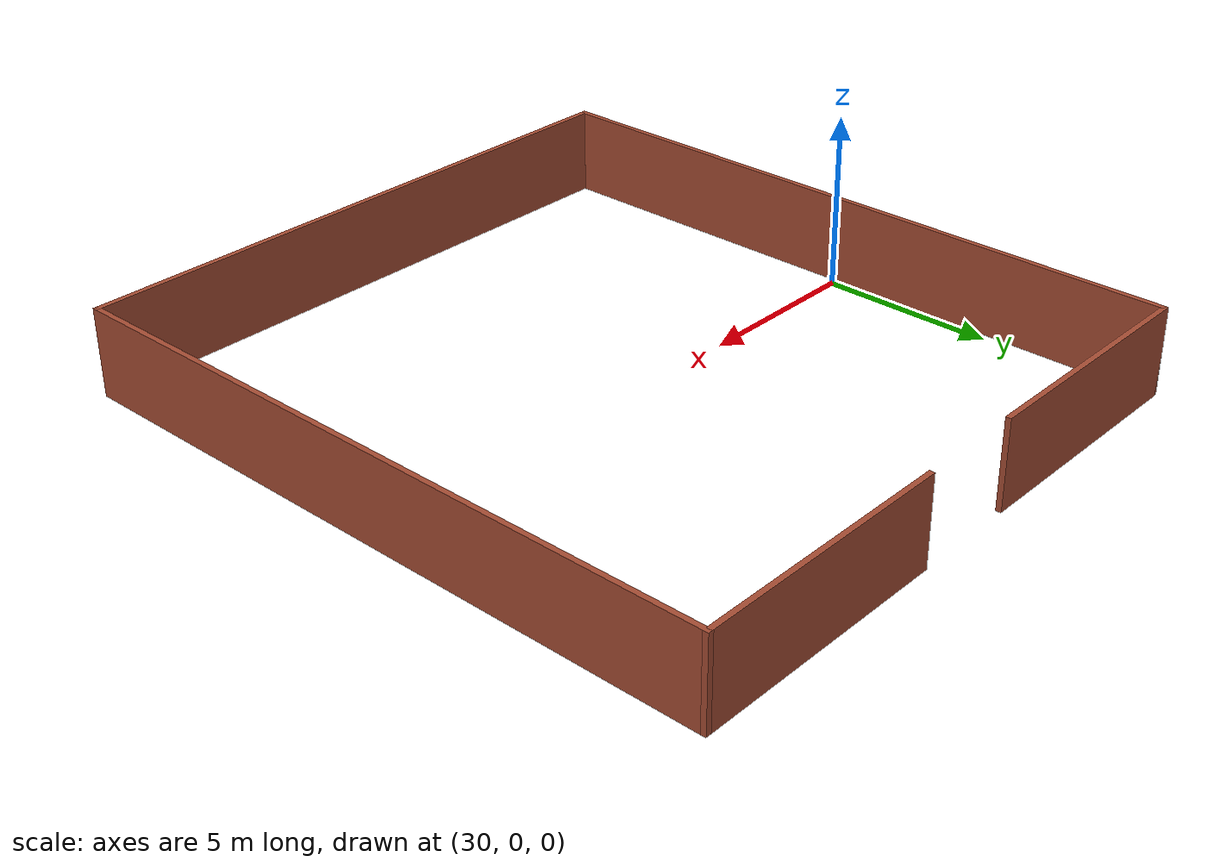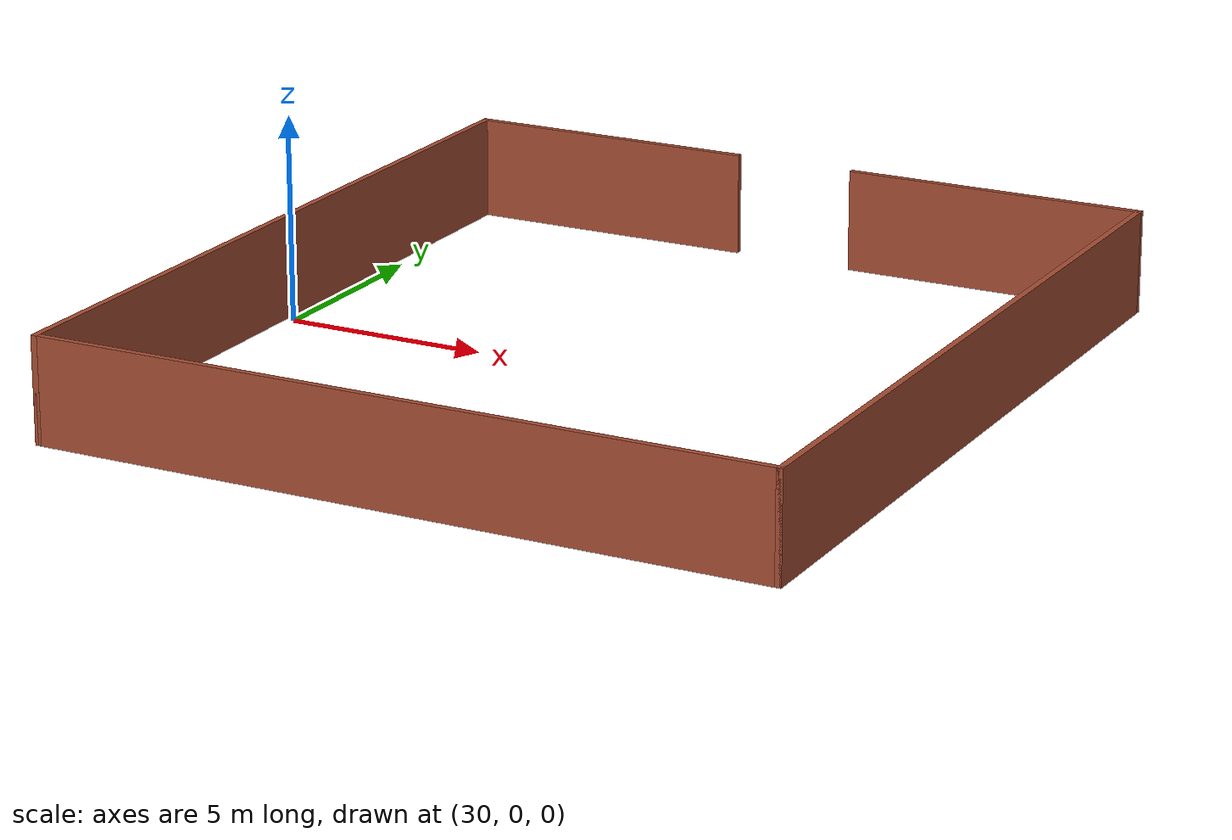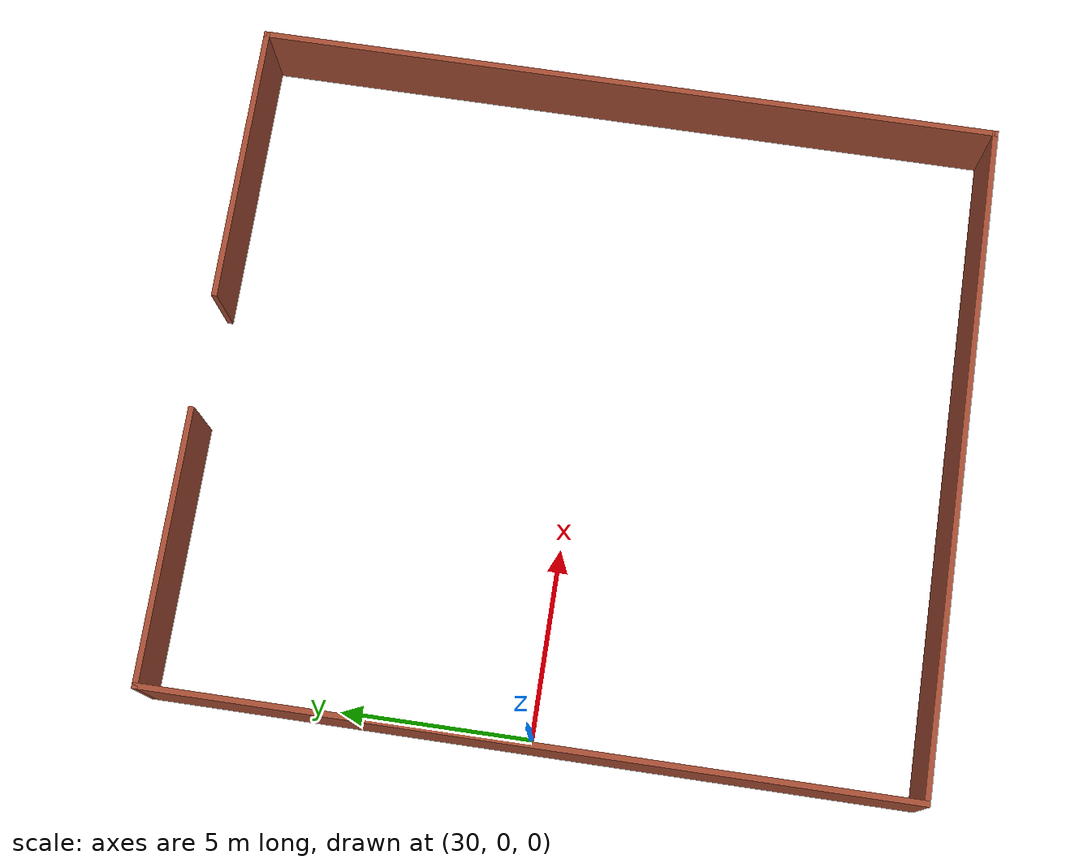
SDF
<?xml version='1.0'?>
<sdf version='1.6'>
  <model name='Untitled'>
    <pose frame=''>38.5061 -0.005097 0 0 -0 0</pose>
    <link name='Wall_10'>
      <collision name='Wall_10_Collision'>
        <geometry>
          <box>
            <size>17.75 0.15 2.5</size>
          </box>
        </geometry>
        <pose frame=''>0 0 1.25 0 -0 0</pose>
      </collision>
      <visual name='Wall_10_Visual'>
        <pose frame=''>0 0 1.25 0 -0 0</pose>
        <geometry>
          <box>
            <size>17.75 0.15 2.5</size>
          </box>
        </geometry>
        <material>
          <script>
            <uri>file://media/materials/scripts/gazebo.material</uri>
            <name>Gazebo/Bricks</name>
          </script>
          <ambient>1 1 1 1</ambient>
        </material>
        <meta>
          <layer>0</layer>
        </meta>
      </visual>
      <pose frame=''>1e-06 -9.8 0 0 -0 0</pose>
    </link>
    <link name='Wall_11'>
      <collision name='Wall_11_Collision'>
        <geometry>
          <box>
            <size>19.75 0.15 2.5</size>
          </box>
        </geometry>
        <pose frame=''>0 0 1.25 0 -0 0</pose>
      </collision>
      <visual name='Wall_11_Visual'>
        <pose frame=''>0 0 1.25 0 -0 0</pose>
        <geometry>
          <box>
            <size>19.75 0.15 2.5</size>
          </box>
        </geometry>
        <material>
          <script>
            <uri>file://media/materials/scripts/gazebo.material</uri>
            <name>Gazebo/Bricks</name>
          </script>
          <ambient>1 1 1 1</ambient>
        </material>
        <meta>
          <layer>0</layer>
        </meta>
      </visual>
      <pose frame=''>8.8 0 0 0 -0 1.5708</pose>
    </link>
    <link name='Wall_13'>
      <collision name='Wall_13_Collision'>
        <geometry>
          <box>
            <size>7.25 0.15 2.5</size>
          </box>
        </geometry>
        <pose frame=''>0 0 1.25 0 -0 0</pose>
      </collision>
      <visual name='Wall_13_Visual'>
        <pose frame=''>0 0 1.25 0 -0 0</pose>
        <geometry>
          <box>
            <size>7.25 0.15 2.5</size>
          </box>
        </geometry>
        <material>
          <script>
            <uri>file://media/materials/scripts/gazebo.material</uri>
            <name>Gazebo/Bricks</name>
          </script>
          <ambient>1 1 1 1</ambient>
        </material>
        <meta>
          <layer>0</layer>
        </meta>
      </visual>
      <pose frame=''>-5.25 9.8 0 0 -0 0</pose>
    </link>
    <link name='Wall_16'>
      <collision name='Wall_16_Collision'>
        <geometry>
          <box>
            <size>7.5 0.15 2.5</size>
          </box>
        </geometry>
        <pose frame=''>0 0 1.25 0 -0 0</pose>
      </collision>
      <visual name='Wall_16_Visual'>
        <pose frame=''>0 0 1.25 0 -0 0</pose>
        <geometry>
          <box>
            <size>7.5 0.15 2.5</size>
          </box>
        </geometry>
        <material>
          <script>
            <uri>file://media/materials/scripts/gazebo.material</uri>
            <name>Gazebo/Bricks</name>
          </script>
          <ambient>1 1 1 1</ambient>
        </material>
        <meta>
          <layer>0</layer>
        </meta>
      </visual>
      <pose frame=''>5.125 9.8 0 0 -0 3.14159</pose>
    </link>
    <link name='Wall_9'>
      <collision name='Wall_9_Collision'>
        <geometry>
          <box>
            <size>19.75 0.15 2.5</size>
          </box>
        </geometry>
        <pose frame=''>0 0 1.25 0 -0 0</pose>
      </collision>
      <visual name='Wall_9_Visual'>
        <pose frame=''>0 0 1.25 0 -0 0</pose>
        <geometry>
          <box>
            <size>19.75 0.15 2.5</size>
          </box>
        </geometry>
        <material>
          <script>
            <uri>file://media/materials/scripts/gazebo.material</uri>
            <name>Gazebo/Bricks</name>
          </script>
          <ambient>1 1 1 1</ambient>
        </material>
        <meta>
          <layer>0</layer>
        </meta>
      </visual>
      <pose frame=''>-8.8 0 0 0 -0 -1.5708</pose>
    </link>
    <static>1</static>
  </model>
</sdf>
